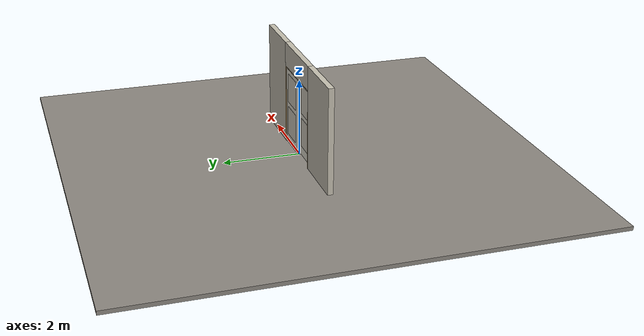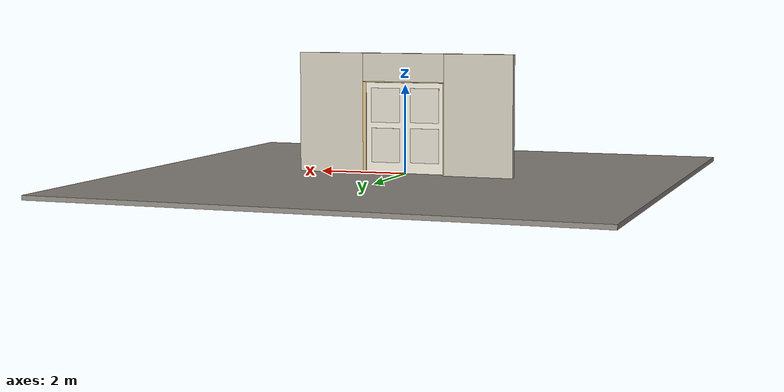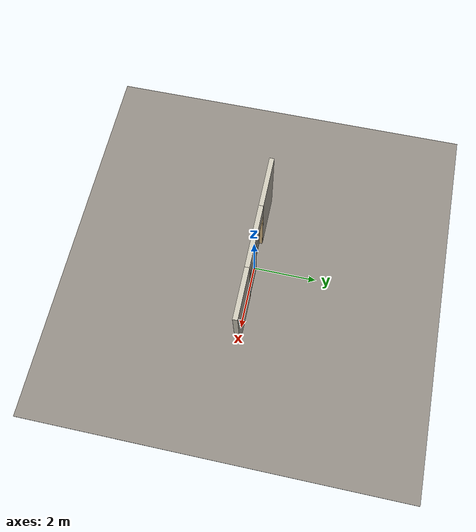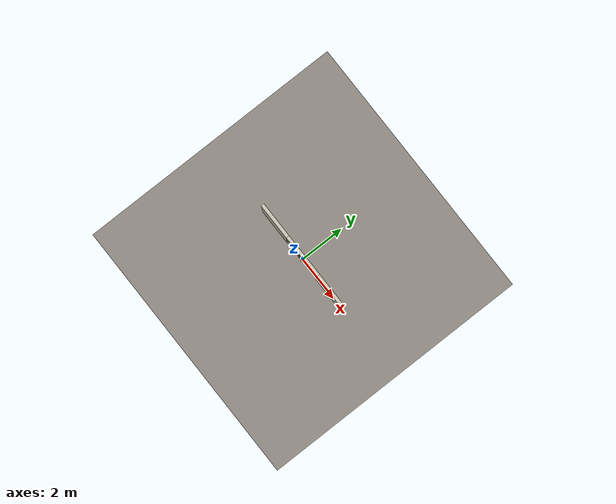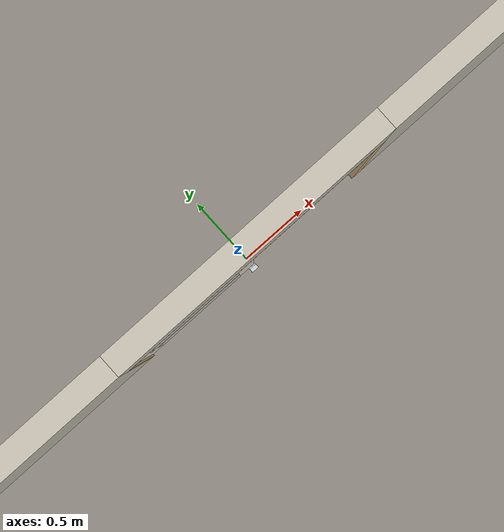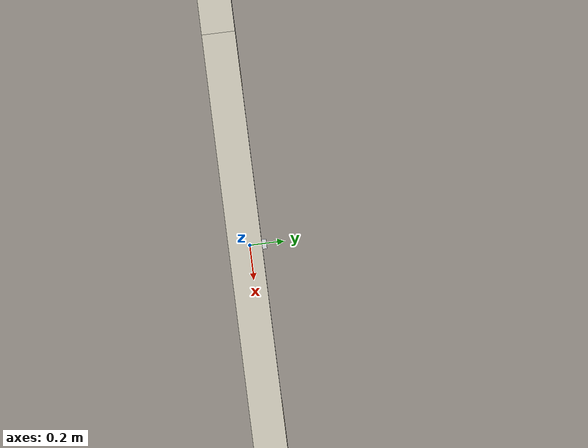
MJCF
<?xml version="1.0" ?>
<mujoco model="db0928_sliding_bypass_simple">
  <compiler angle="radian" meshdir="../../hardware" texturedir="../../textures" autolimits="true" inertiafromgeom="false"/>
  <option timestep="0.002" integrator="implicitfast" cone="elliptic" impratio="10" noslip_iterations="3">
    <flag multiccd="enable"/>
  </option>
  <size memory="16M"/>
  <default>
    <geom condim="4" solref="0.005 1" solimp="0.95 0.99 0.001"/>
    <joint solreflimit="0.005 1" solimplimit="0.95 0.99 0.001"/>
    <tendon solreflimit="0.005 1"/>
    <equality solref="0.002 1"/>
  </default>
  <visual>
    <headlight ambient="0.4 0.4 0.4" diffuse="0.7 0.7 0.7" specular="0.2 0.2 0.2"/>
    <quality shadowsize="4096"/>
    <map znear="0.01" zfar="60"/>
  </visual>
  <asset>
    <material name="mat_floor" rgba="0.55 0.53 0.5 1" specular="0.2" shininess="0.15" reflectance="0"/>
    <material name="mat_wall" rgba="0.78 0.76 0.7 1" specular="0.2" shininess="0.1" reflectance="0"/>
    <material name="mat_frame" rgba="0.82 0.7 0.5 1" specular="0.2" shininess="0.45" reflectance="0"/>
    <material name="mat_track" rgba="0.8 0.81 0.83 1" specular="0.8" shininess="0.6" reflectance="0.4"/>
    <material name="mat_leaf_0" rgba="0.9 0.88 0.82 1" specular="0.2" shininess="0.42" reflectance="0"/>
    <material name="mat_leaf_0_panel" rgba="0.828 0.81 0.754 1" specular="0.2" shininess="0.42" reflectance="0"/>
    <material name="mat_roller" rgba="0.65 0.66 0.68 1" specular="0.74" shininess="0.5" reflectance="0.36"/>
    <material name="mat_op_nickel_satin" rgba="0.72 0.7 0.66 1" specular="0.8" shininess="0.65" reflectance="0.4"/>
    <material name="mat_leaf_1" rgba="0.9 0.88 0.82 1" specular="0.2" shininess="0.42" reflectance="0"/>
    <material name="mat_leaf_1_panel" rgba="0.828 0.81 0.754 1" specular="0.2" shininess="0.42" reflectance="0"/>
    <material name="mat_hook" rgba="0.75 0.76 0.77 1" specular="0.8" shininess="0.65" reflectance="0.4"/>
    <texture name="skybox" type="skybox" builtin="gradient" rgb1="0.6 0.7 0.85" rgb2="0.9 0.92 0.95" width="256" height="256"/>
  </asset>
  <worldbody>
    <light name="sun" pos="1.5 -2.5 4" dir="-0.3 0.5 -0.8" directional="true" diffuse="0.8 0.8 0.8" specular="0.3 0.3 0.3" castshadow="true"/>
    <light name="fill" pos="-1.5 2.5 3" dir="0.3 -0.5 -0.7" directional="true" diffuse="0.35 0.35 0.4" castshadow="false"/>
    <camera name="robot_view" pos="0 -2.54875 1.73965" xyaxes="1 0 0 0 0.26963 0.962964" fovy="52"/>
    <camera name="far_view" pos="0 2.54875 1.73965" xyaxes="-1 0 0 0 -0.26963 0.962964" fovy="52"/>
    <camera name="iso" pos="1.93705 -2.14095 2.14745" xyaxes="0.741536 0.670913 0 -0.242917 0.268487 0.932151" fovy="46"/>
    <camera name="detail_handle" pos="-0.631 -0.86 1.28" xyaxes="0.97561 0.219512 0 -0.070934 0.315262 0.94635" fovy="38"/>
    <geom name="floor" type="box" size="6 6 0.05" pos="0 0 -0.05" material="mat_floor" group="0" contype="1" conaffinity="1" friction="0.8 0.005 0.0001" density="2400"/>
    <geom name="wall_left" type="box" size="0.7885 0.0725 1.35" pos="-1.7115 0 1.35" material="mat_wall" group="0" contype="1" conaffinity="1" friction="0.6 0.005 0.0001" density="800"/>
    <geom name="wall_right" type="box" size="0.7585 0.0725 1.35" pos="1.7415 0 1.35" material="mat_wall" group="0" contype="1" conaffinity="1" friction="0.6 0.005 0.0001" density="800"/>
    <geom name="wall_header" type="box" size="0.953 0.0725 0.3145" pos="0.03 0 2.3855" material="mat_wall" group="0" contype="1" conaffinity="1" friction="0.6 0.005 0.0001" density="800"/>
    <geom name="jamb_l" type="box" size="0.0095 0.0725 1.026" pos="-0.9135 0 1.026" material="mat_frame" group="0" contype="1" conaffinity="1" friction="0.6 0.005 0.0001" density="300"/>
    <geom name="jamb_head" type="box" size="0.923 0.0725 0.0095" pos="0 0 2.0615" material="mat_frame" group="0" contype="1" conaffinity="1" friction="0.6 0.005 0.0001" density="300"/>
    <geom name="leaf_0_track_header" type="box" size="0.949 0.025 0.04" pos="-0.002 -0.0425 2.111" material="mat_track" group="0" contype="1" conaffinity="1" friction="0.6 0.005 0.0001" density="2700"/>
    <geom name="leaf_1_track_header" type="box" size="0.949 0.025 0.04" pos="0.002 0.0425 2.111" material="mat_track" group="0" contype="1" conaffinity="1" friction="0.6 0.005 0.0001" density="2700"/>
    <geom name="leaf_0_floor_guide_0_n" type="box" size="0.028 0.004 0.01" pos="-0.002 -0.065 0.01" material="mat_track" group="0" contype="1" conaffinity="1" friction="0.6 0.005 0.0001" density="7850"/>
    <geom name="leaf_0_floor_guide_0_n_foot" type="box" size="0.028 0.018 0.002" pos="-0.002 -0.079 0.002" material="mat_track" group="0" contype="1" conaffinity="1" friction="0.6 0.005 0.0001" density="7850"/>
    <geom name="leaf_0_floor_guide_0_p" type="box" size="0.028 0.004 0.01" pos="-0.002 -0.02 0.01" material="mat_track" group="0" contype="1" conaffinity="1" friction="0.6 0.005 0.0001" density="7850"/>
    <geom name="leaf_0_floor_guide_0_p_foot" type="box" size="0.028 0.018 0.002" pos="-0.002 -0.006 0.002" material="mat_track" group="0" contype="1" conaffinity="1" friction="0.6 0.005 0.0001" density="7850"/>
    <geom name="leaf_1_floor_guide_0_n" type="box" size="0.028 0.004 0.01" pos="0.002 0.02 0.01" material="mat_track" group="0" contype="1" conaffinity="1" friction="0.6 0.005 0.0001" density="7850"/>
    <geom name="leaf_1_floor_guide_0_n_foot" type="box" size="0.028 0.018 0.002" pos="0.002 0.006 0.002" material="mat_track" group="0" contype="1" conaffinity="1" friction="0.6 0.005 0.0001" density="7850"/>
    <geom name="leaf_1_floor_guide_0_p" type="box" size="0.028 0.004 0.01" pos="0.002 0.065 0.01" material="mat_track" group="0" contype="1" conaffinity="1" friction="0.6 0.005 0.0001" density="7850"/>
    <geom name="leaf_1_floor_guide_0_p_foot" type="box" size="0.028 0.018 0.002" pos="0.002 0.079 0.002" material="mat_track" group="0" contype="1" conaffinity="1" friction="0.6 0.005 0.0001" density="7850"/>
    <geom name="jamb_latch_0" type="box" size="0.0395 0.0725 1.026" pos="0.9435 0 1.026" material="mat_frame" group="0" contype="1" conaffinity="1" friction="0.6 0.005 0.0001" density="300"/>
    <site name="approach_point" pos="0 -1.5 0" quat="1 0 0 0" size="0.05" rgba="0.2 0.9 0.2 0.5" group="4"/>
    <site name="goal_point" pos="0 1.5 0" quat="1 0 0 0" size="0.05" rgba="0.2 0.9 0.2 0.5" group="4"/>
    <site name="door_plane_center" pos="0 0 1.026" quat="1 0 0 0" size="0.02" rgba="0.2 0.9 0.2 0.5" group="4"/>
    <body name="leaf_0" pos="-0.444 -0.0425 0">
      <inertial pos="-0.000072 -0.000004 1.028043" mass="15.478789" quat="0.499997 0.500006 -0.499993 0.500003" diaginertia="1.078963079 5.325461014 6.401254522"/>
      <joint name="leaf_0_slide" type="slide" axis="1 0 0" limited="true" range="0 0.868" damping="2.775189" frictionloss="5.929569" armature="0.5"/>
      <geom name="leaf_0_slab" type="box" size="0.457 0.0175 1.016" pos="0 0 1.028" material="mat_leaf_0" group="0" contype="1" conaffinity="1" friction="0.35 0.005 0.0001" density="1"/>
      <geom name="leaf_0_panel_0_n" type="box" size="0.33646 0.003 0.38422" pos="0 -0.0205 0.63974" material="mat_leaf_0_panel" group="1" contype="0" conaffinity="0" density="1"/>
      <geom name="leaf_0_panel_0_p" type="box" size="0.33646 0.003 0.38422" pos="0 0.0205 0.63974" material="mat_leaf_0_panel" group="1" contype="0" conaffinity="0" density="1"/>
      <geom name="leaf_0_panel_1_n" type="box" size="0.33646 0.003 0.38422" pos="0 -0.0205 1.53818" material="mat_leaf_0_panel" group="1" contype="0" conaffinity="0" density="1"/>
      <geom name="leaf_0_panel_1_p" type="box" size="0.33646 0.003 0.38422" pos="0 0.0205 1.53818" material="mat_leaf_0_panel" group="1" contype="0" conaffinity="0" density="1"/>
      <geom name="leaf_0_pull_n" type="box" size="0.0275 0.0005 0.0275" pos="-0.367 -0.018 1" material="mat_op_nickel_satin" group="1" contype="0" conaffinity="0" density="1000"/>
      <site name="leaf_0_pull_grip_n" pos="-0.367 -0.0175 1" quat="1 0 0 0" size="0.012" rgba="0.2 0.9 0.2 0.5" group="4"/>
      <site name="leaf_0_edge_mid" pos="-0.457 0 1.028" quat="1 0 0 0" size="0.02" rgba="0.2 0.9 0.2 0.5" group="4"/>
    </body>
    <body name="leaf_1" pos="0.444 0.0425 0">
      <inertial pos="0.000072 -0.000004 1.028043" mass="15.478789" quat="0.500003 0.499993 -0.500006 0.499997" diaginertia="1.078963079 5.325461014 6.401254522"/>
      <joint name="leaf_1_slide" type="slide" axis="-1 0 0" limited="true" range="0 0.868" damping="2.775189" frictionloss="5.929569" armature="0.5"/>
      <geom name="leaf_1_slab" type="box" size="0.457 0.0175 1.016" pos="0 0 1.028" material="mat_leaf_1" group="0" contype="1" conaffinity="1" friction="0.35 0.005 0.0001" density="1"/>
      <geom name="leaf_1_panel_0_n" type="box" size="0.33646 0.003 0.38422" pos="0 -0.0205 0.63974" material="mat_leaf_1_panel" group="1" contype="0" conaffinity="0" density="1"/>
      <geom name="leaf_1_panel_0_p" type="box" size="0.33646 0.003 0.38422" pos="0 0.0205 0.63974" material="mat_leaf_1_panel" group="1" contype="0" conaffinity="0" density="1"/>
      <geom name="leaf_1_panel_1_n" type="box" size="0.33646 0.003 0.38422" pos="0 -0.0205 1.53818" material="mat_leaf_1_panel" group="1" contype="0" conaffinity="0" density="1"/>
      <geom name="leaf_1_panel_1_p" type="box" size="0.33646 0.003 0.38422" pos="0 0.0205 1.53818" material="mat_leaf_1_panel" group="1" contype="0" conaffinity="0" density="1"/>
      <geom name="leaf_1_pull_n" type="box" size="0.0275 0.0005 0.0275" pos="0.367 -0.018 1" material="mat_op_nickel_satin" group="1" contype="0" conaffinity="0" density="1000"/>
      <site name="leaf_1_pull_grip_n" pos="0.367 -0.0175 1" quat="1 0 0 0" size="0.012" rgba="0.2 0.9 0.2 0.5" group="4"/>
      <site name="leaf_1_edge_mid" pos="0.457 0 1.028" quat="1 0 0 0" size="0.02" rgba="0.2 0.9 0.2 0.5" group="4"/>
    </body>
  </worldbody>
  <sensor>
    <jointpos name="leaf_0_slide_pos" joint="leaf_0_slide"/>
    <jointvel name="leaf_0_slide_vel" joint="leaf_0_slide"/>
    <jointpos name="leaf_1_slide_pos" joint="leaf_1_slide"/>
    <jointvel name="leaf_1_slide_vel" joint="leaf_1_slide"/>
  </sensor>
</mujoco>
